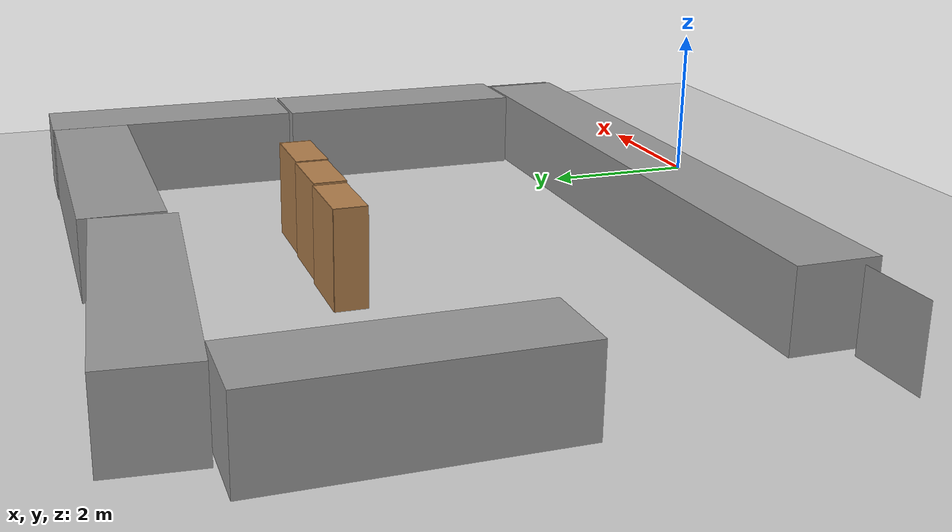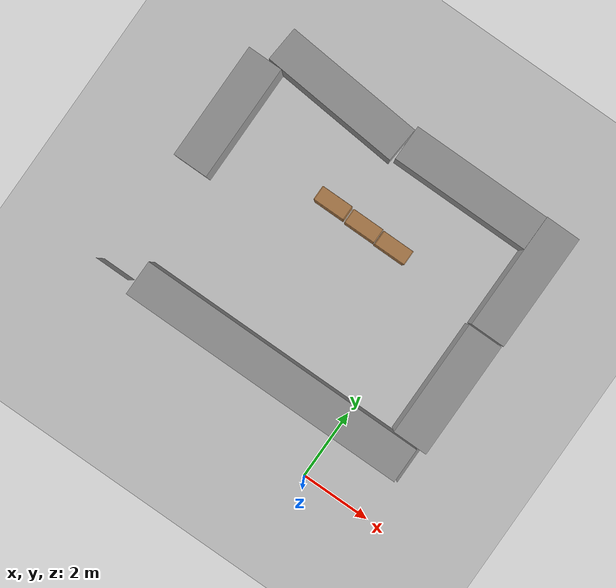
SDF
<sdf version="1.7">
 <world name="default">
  <model name="ground_plane">
   <static>1</static>
   <link name="link">
    <collision name="collision">
     <geometry><plane><normal>0 0 1</normal><size>100 100</size></plane></geometry>
     <surface>
      <contact><collide_bitmask>65535</collide_bitmask></contact>
      <friction><ode><mu>100</mu><mu2>50</mu2></ode></friction>
     </surface>
    </collision>
    <visual name="visual">
     <cast_shadows>0</cast_shadows>
     <geometry><plane><normal>0 0 1</normal><size>100 100</size></plane></geometry>
     <material>
      <script><uri>file://media/materials/scripts/gazebo.material</uri><name>Gazebo/Grey</name></script>
     </material>
    </visual>
   </link>
  </model>
  <model name="unit_box">
   <pose>1.95442 1.85842 0.498763 0 -0.000556 -7e-06</pose>
   <link name="link">
    <inertial>
     <mass>1</mass>
     <inertia>
      <ixx>0.166667</ixx>
      <ixy>0</ixy>
      <ixz>0</ixz>
      <iyy>0.166667</iyy>
      <iyz>0</iyz>
      <izz>0.166667</izz>
     </inertia>
    </inertial>
    <collision name="collision"><geometry><box><size>0.000129031 1 1</size></box></geometry></collision>
    <visual name="visual">
     <geometry><box><size>0.000129031 1 1</size></box></geometry>
     <material>
      <script><name>Gazebo/Grey</name><uri>file://media/materials/scripts/gazebo.material</uri></script>
     </material>
    </visual>
   </link>
  </model>
  <model name="unit_box_clone_0">
   <pose>-2.27694 1.82898 0.499246 0 -0.000376 8.4e-05</pose>
   <link name="link">
    <inertial>
     <mass>1</mass>
     <inertia>
      <ixx>0.166667</ixx>
      <ixy>0</ixy>
      <ixz>0</ixz>
      <iyy>0.166667</iyy>
      <iyz>0</iyz>
      <izz>0.166667</izz>
     </inertia>
    </inertial>
    <collision name="collision"><geometry><box><size>8.32476 1 1</size></box></geometry></collision>
    <visual name="visual">
     <geometry><box><size>8.32476 1 1</size></box></geometry>
     <material>
      <script><name>Gazebo/Grey</name><uri>file://media/materials/scripts/gazebo.material</uri></script>
     </material>
    </visual>
   </link>
  </model>
  <model name="unit_box_1">
   <pose>-7.09005 1.64327 0.493341 0.002064 1e-06 -0.000244</pose>
   <link name="link">
    <inertial>
     <mass>1</mass>
     <inertia>
      <ixx>0.166667</ixx>
      <ixy>0</ixy>
      <ixz>0</ixz>
      <iyy>0.166667</iyy>
      <iyz>0</iyz>
      <izz>0.166667</izz>
     </inertia>
    </inertial>
    <collision name="collision"><geometry><box><size>1 1.29116e-05 1</size></box></geometry></collision>
    <visual name="visual">
     <geometry><box><size>1 1.29116e-05 1</size></box></geometry>
     <material>
      <script><name>Gazebo/Grey</name><uri>file://media/materials/scripts/gazebo.material</uri></script>
     </material>
    </visual>
   </link>
  </model>
  <model name="unit_box_0_clone">
   <pose>-6.98255 6.59379 0.499695 0.000183 -0 0.000242</pose>
   <link name="link">
    <inertial>
     <mass>1</mass>
     <inertia>
      <ixx>0.166667</ixx>
      <ixy>0</ixy>
      <ixz>0</ixz>
      <iyy>0.166667</iyy>
      <iyz>0</iyz>
      <izz>0.166667</izz>
     </inertia>
    </inertial>
    <collision name="collision"><geometry><box><size>1 3.33664 1</size></box></geometry></collision>
    <visual name="visual">
     <geometry><box><size>1 3.33664 1</size></box></geometry>
     <material>
      <script><name>Gazebo/Grey</name><uri>file://media/materials/scripts/gazebo.material</uri></script>
     </material>
    </visual>
   </link>
  </model>
  <model name="unit_box_0_clone_clone">
   <pose>1.64999 4.03352 0.499695 -0.000183 -0 -0.001531</pose>
   <link name="link">
    <inertial>
     <mass>1</mass>
     <inertia>
      <ixx>0.166667</ixx>
      <ixy>0</ixy>
      <ixz>0</ixz>
      <iyy>0.166667</iyy>
      <iyz>0</iyz>
      <izz>0.166667</izz>
     </inertia>
    </inertial>
    <collision name="collision"><geometry><box><size>1 3.33664 1</size></box></geometry></collision>
    <visual name="visual">
     <geometry><box><size>1 3.33664 1</size></box></geometry>
     <material>
      <script><name>Gazebo/Grey</name><uri>file://media/materials/scripts/gazebo.material</uri></script>
     </material>
    </visual>
   </link>
  </model>
  <model name="unit_box_0_clone_clone_clone">
   <pose>1.69585 7.408 0.499695 0.000183 -0 -0.003719</pose>
   <link name="link">
    <inertial>
     <mass>1</mass>
     <inertia>
      <ixx>0.166667</ixx>
      <ixy>0</ixy>
      <ixz>0</ixz>
      <iyy>0.166667</iyy>
      <iyz>0</iyz>
      <izz>0.166667</izz>
     </inertia>
    </inertial>
    <collision name="collision"><geometry><box><size>1 3.33664 1</size></box></geometry></collision>
    <visual name="visual">
     <geometry><box><size>1 3.33664 1</size></box></geometry>
     <material>
      <script><name>Gazebo/Grey</name><uri>file://media/materials/scripts/gazebo.material</uri></script>
     </material>
    </visual>
   </link>
  </model>
  <model name="unit_box_clone_0_clone">
   <pose>-0.80626 8.56595 0.499246 0 -0.000376 -0.001617</pose>
   <link name="link">
    <inertial>
     <mass>1</mass>
     <inertia>
      <ixx>0.166667</ixx>
      <ixy>0</ixy>
      <ixz>0</ixz>
      <iyy>0.166667</iyy>
      <iyz>0</iyz>
      <izz>0.166667</izz>
     </inertia>
    </inertial>
    <collision name="collision"><geometry><box><size>4.00821 1 1</size></box></geometry></collision>
    <visual name="visual">
     <geometry><box><size>4.00821 1 1</size></box></geometry>
     <material>
      <script><name>Gazebo/Grey</name><uri>file://media/materials/scripts/gazebo.material</uri></script>
     </material>
    </visual>
   </link>
  </model>
  <model name="unit_box_clone_0_clone_clone">
   <pose>-4.85701 8.62809 0.499999 2e-06 0 -0.086328</pose>
   <link name="link">
    <inertial>
     <mass>1</mass>
     <inertia>
      <ixx>0.166667</ixx>
      <ixy>0</ixy>
      <ixz>0</ixz>
      <iyy>0.166667</iyy>
      <iyz>0</iyz>
      <izz>0.166667</izz>
     </inertia>
    </inertial>
    <collision name="collision"><geometry><box><size>4.00821 1 1</size></box></geometry></collision>
    <visual name="visual">
     <geometry><box><size>4.00821 1 1</size></box></geometry>
     <material>
      <script><name>Gazebo/Grey</name><uri>file://media/materials/scripts/gazebo.material</uri></script>
     </material>
    </visual>
   </link>
  </model>
  <model name="bookshelf">
   <static>1</static>
   <link name="link">
    <inertial><mass>1</mass></inertial>
    <collision name="back">
     <pose>0 0.005 0.6 0 -0 0</pose>
     <geometry><box><size>0.9 0.01 1.2</size></box></geometry>
    </collision>
    <visual name="visual1">
     <pose>0 0.005 0.6 0 -0 0</pose>
     <geometry><box><size>0.9 0.01 1.2</size></box></geometry>
     <material>
      <script><uri>file://media/materials/scripts/gazebo.material</uri><name>Gazebo/Wood</name></script>
     </material>
    </visual>
    <collision name="left_side">
     <pose>0.45 -0.195 0.6 0 -0 0</pose>
     <geometry><box><size>0.02 0.4 1.2</size></box></geometry>
    </collision>
    <visual name="visual2">
     <pose>0.45 -0.195 0.6 0 -0 0</pose>
     <geometry><box><size>0.02 0.4 1.2</size></box></geometry>
     <material>
      <script><uri>file://media/materials/scripts/gazebo.material</uri><name>Gazebo/Wood</name></script>
     </material>
    </visual>
    <collision name="right_side">
     <pose>-0.45 -0.195 0.6 0 -0 0</pose>
     <geometry><box><size>0.02 0.4 1.2</size></box></geometry>
    </collision>
    <visual name="visual3">
     <pose>-0.45 -0.195 0.6 0 -0 0</pose>
     <geometry><box><size>0.02 0.4 1.2</size></box></geometry>
     <material>
      <script><uri>file://media/materials/scripts/gazebo.material</uri><name>Gazebo/Wood</name></script>
     </material>
    </visual>
    <collision name="bottom">
     <pose>0 -0.195 0.03 0 -0 0</pose>
     <geometry><box><size>0.88 0.4 0.06</size></box></geometry>
    </collision>
    <visual name="visual4">
     <pose>0 -0.195 0.03 0 -0 0</pose>
     <geometry><box><size>0.88 0.4 0.06</size></box></geometry>
     <material>
      <script><uri>file://media/materials/scripts/gazebo.material</uri><name>Gazebo/Wood</name></script>
     </material>
    </visual>
    <collision name="top">
     <pose>0 -0.195 1.19 0 -0 0</pose>
     <geometry><box><size>0.88 0.4 0.02</size></box></geometry>
    </collision>
    <visual name="visual5">
     <pose>0 -0.195 1.19 0 -0 0</pose>
     <geometry><box><size>0.88 0.4 0.02</size></box></geometry>
     <material>
      <script><uri>file://media/materials/scripts/gazebo.material</uri><name>Gazebo/Wood</name></script>
     </material>
    </visual>
    <collision name="low_shelf">
     <pose>0 -0.195 0.43 0 -0 0</pose>
     <geometry><box><size>0.88 0.4 0.02</size></box></geometry>
    </collision>
    <visual name="visual6">
     <pose>0 -0.195 0.43 0 -0 0</pose>
     <geometry><box><size>0.88 0.4 0.02</size></box></geometry>
     <material>
      <script><uri>file://media/materials/scripts/gazebo.material</uri><name>Gazebo/Wood</name></script>
     </material>
    </visual>
    <collision name="high_shelf">
     <pose>0 -0.195 0.8 0 -0 0</pose>
     <geometry><box><size>0.88 0.4 0.02</size></box></geometry>
    </collision>
    <visual name="visual7">
     <pose>0 -0.195 0.8 0 -0 0</pose>
     <geometry><box><size>0.88 0.4 0.02</size></box></geometry>
     <material>
      <script><uri>file://media/materials/scripts/gazebo.material</uri><name>Gazebo/Wood</name></script>
     </material>
    </visual>
   </link>
   <pose>-3.44887 6.42669 0 0 -0 0</pose>
  </model>
  <model name="bookshelf_clone">
   <static>1</static>
   <link name="link">
    <inertial><mass>1</mass></inertial>
    <collision name="back">
     <pose>0 0.005 0.6 0 -0 0</pose>
     <geometry><box><size>0.9 0.01 1.2</size></box></geometry>
    </collision>
    <visual name="visual1">
     <pose>0 0.005 0.6 0 -0 0</pose>
     <geometry><box><size>0.9 0.01 1.2</size></box></geometry>
     <material>
      <script><uri>file://media/materials/scripts/gazebo.material</uri><name>Gazebo/Wood</name></script>
     </material>
    </visual>
    <collision name="left_side">
     <pose>0.45 -0.195 0.6 0 -0 0</pose>
     <geometry><box><size>0.02 0.4 1.2</size></box></geometry>
    </collision>
    <visual name="visual2">
     <pose>0.45 -0.195 0.6 0 -0 0</pose>
     <geometry><box><size>0.02 0.4 1.2</size></box></geometry>
     <material>
      <script><uri>file://media/materials/scripts/gazebo.material</uri><name>Gazebo/Wood</name></script>
     </material>
    </visual>
    <collision name="right_side">
     <pose>-0.45 -0.195 0.6 0 -0 0</pose>
     <geometry><box><size>0.02 0.4 1.2</size></box></geometry>
    </collision>
    <visual name="visual3">
     <pose>-0.45 -0.195 0.6 0 -0 0</pose>
     <geometry><box><size>0.02 0.4 1.2</size></box></geometry>
     <material>
      <script><uri>file://media/materials/scripts/gazebo.material</uri><name>Gazebo/Wood</name></script>
     </material>
    </visual>
    <collision name="bottom">
     <pose>0 -0.195 0.03 0 -0 0</pose>
     <geometry><box><size>0.88 0.4 0.06</size></box></geometry>
    </collision>
    <visual name="visual4">
     <pose>0 -0.195 0.03 0 -0 0</pose>
     <geometry><box><size>0.88 0.4 0.06</size></box></geometry>
     <material>
      <script><uri>file://media/materials/scripts/gazebo.material</uri><name>Gazebo/Wood</name></script>
     </material>
    </visual>
    <collision name="top">
     <pose>0 -0.195 1.19 0 -0 0</pose>
     <geometry><box><size>0.88 0.4 0.02</size></box></geometry>
    </collision>
    <visual name="visual5">
     <pose>0 -0.195 1.19 0 -0 0</pose>
     <geometry><box><size>0.88 0.4 0.02</size></box></geometry>
     <material>
      <script><uri>file://media/materials/scripts/gazebo.material</uri><name>Gazebo/Wood</name></script>
     </material>
    </visual>
    <collision name="low_shelf">
     <pose>0 -0.195 0.43 0 -0 0</pose>
     <geometry><box><size>0.88 0.4 0.02</size></box></geometry>
    </collision>
    <visual name="visual6">
     <pose>0 -0.195 0.43 0 -0 0</pose>
     <geometry><box><size>0.88 0.4 0.02</size></box></geometry>
     <material>
      <script><uri>file://media/materials/scripts/gazebo.material</uri><name>Gazebo/Wood</name></script>
     </material>
    </visual>
    <collision name="high_shelf">
     <pose>0 -0.195 0.8 0 -0 0</pose>
     <geometry><box><size>0.88 0.4 0.02</size></box></geometry>
    </collision>
    <visual name="visual7">
     <pose>0 -0.195 0.8 0 -0 0</pose>
     <geometry><box><size>0.88 0.4 0.02</size></box></geometry>
     <material>
      <script><uri>file://media/materials/scripts/gazebo.material</uri><name>Gazebo/Wood</name></script>
     </material>
    </visual>
   </link>
   <pose>-2.47771 6.39873 0 0 -0 0</pose>
  </model>
  <model name="bookshelf_clone_clone">
   <static>1</static>
   <link name="link">
    <inertial><mass>1</mass></inertial>
    <collision name="back">
     <pose>0 0.005 0.6 0 -0 0</pose>
     <geometry><box><size>0.9 0.01 1.2</size></box></geometry>
    </collision>
    <visual name="visual1">
     <pose>0 0.005 0.6 0 -0 0</pose>
     <geometry><box><size>0.9 0.01 1.2</size></box></geometry>
     <material>
      <script><uri>file://media/materials/scripts/gazebo.material</uri><name>Gazebo/Wood</name></script>
     </material>
    </visual>
    <collision name="left_side">
     <pose>0.45 -0.195 0.6 0 -0 0</pose>
     <geometry><box><size>0.02 0.4 1.2</size></box></geometry>
    </collision>
    <visual name="visual2">
     <pose>0.45 -0.195 0.6 0 -0 0</pose>
     <geometry><box><size>0.02 0.4 1.2</size></box></geometry>
     <material>
      <script><uri>file://media/materials/scripts/gazebo.material</uri><name>Gazebo/Wood</name></script>
     </material>
    </visual>
    <collision name="right_side">
     <pose>-0.45 -0.195 0.6 0 -0 0</pose>
     <geometry><box><size>0.02 0.4 1.2</size></box></geometry>
    </collision>
    <visual name="visual3">
     <pose>-0.45 -0.195 0.6 0 -0 0</pose>
     <geometry><box><size>0.02 0.4 1.2</size></box></geometry>
     <material>
      <script><uri>file://media/materials/scripts/gazebo.material</uri><name>Gazebo/Wood</name></script>
     </material>
    </visual>
    <collision name="bottom">
     <pose>0 -0.195 0.03 0 -0 0</pose>
     <geometry><box><size>0.88 0.4 0.06</size></box></geometry>
    </collision>
    <visual name="visual4">
     <pose>0 -0.195 0.03 0 -0 0</pose>
     <geometry><box><size>0.88 0.4 0.06</size></box></geometry>
     <material>
      <script><uri>file://media/materials/scripts/gazebo.material</uri><name>Gazebo/Wood</name></script>
     </material>
    </visual>
    <collision name="top">
     <pose>0 -0.195 1.19 0 -0 0</pose>
     <geometry><box><size>0.88 0.4 0.02</size></box></geometry>
    </collision>
    <visual name="visual5">
     <pose>0 -0.195 1.19 0 -0 0</pose>
     <geometry><box><size>0.88 0.4 0.02</size></box></geometry>
     <material>
      <script><uri>file://media/materials/scripts/gazebo.material</uri><name>Gazebo/Wood</name></script>
     </material>
    </visual>
    <collision name="low_shelf">
     <pose>0 -0.195 0.43 0 -0 0</pose>
     <geometry><box><size>0.88 0.4 0.02</size></box></geometry>
    </collision>
    <visual name="visual6">
     <pose>0 -0.195 0.43 0 -0 0</pose>
     <geometry><box><size>0.88 0.4 0.02</size></box></geometry>
     <material>
      <script><uri>file://media/materials/scripts/gazebo.material</uri><name>Gazebo/Wood</name></script>
     </material>
    </visual>
    <collision name="high_shelf">
     <pose>0 -0.195 0.8 0 -0 0</pose>
     <geometry><box><size>0.88 0.4 0.02</size></box></geometry>
    </collision>
    <visual name="visual7">
     <pose>0 -0.195 0.8 0 -0 0</pose>
     <geometry><box><size>0.88 0.4 0.02</size></box></geometry>
     <material>
      <script><uri>file://media/materials/scripts/gazebo.material</uri><name>Gazebo/Wood</name></script>
     </material>
    </visual>
   </link>
   <pose>-1.53956 6.38098 0 0 -0 0</pose>
  </model>
 </world>
</sdf>
